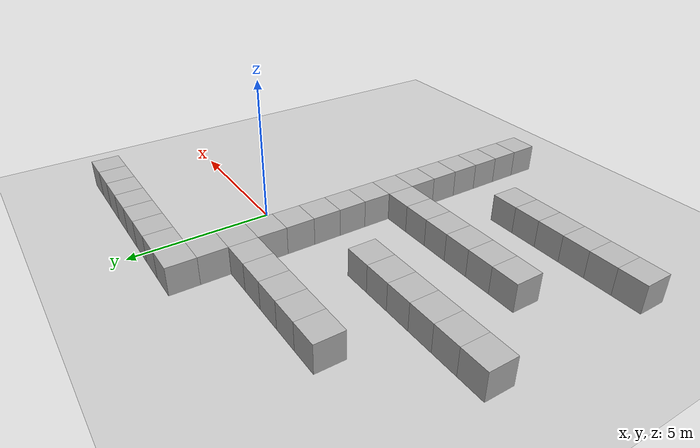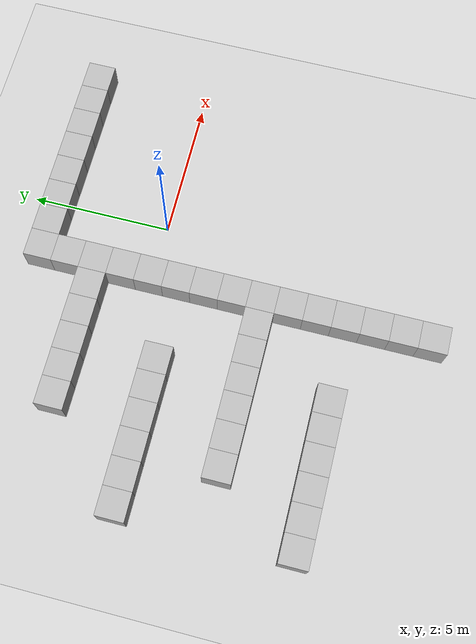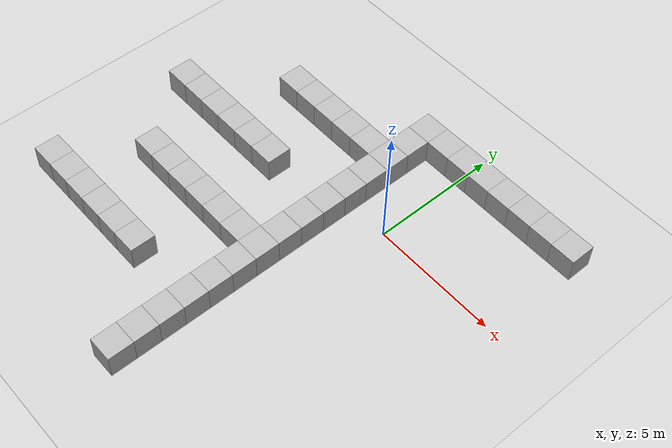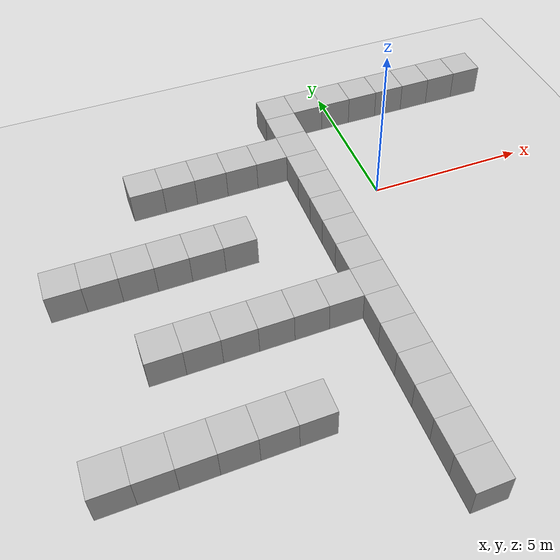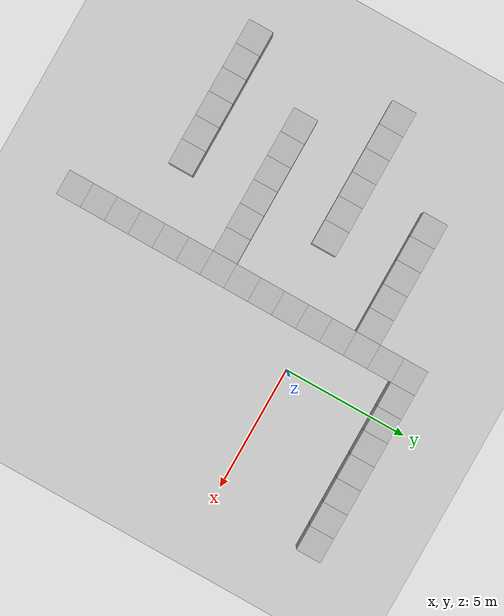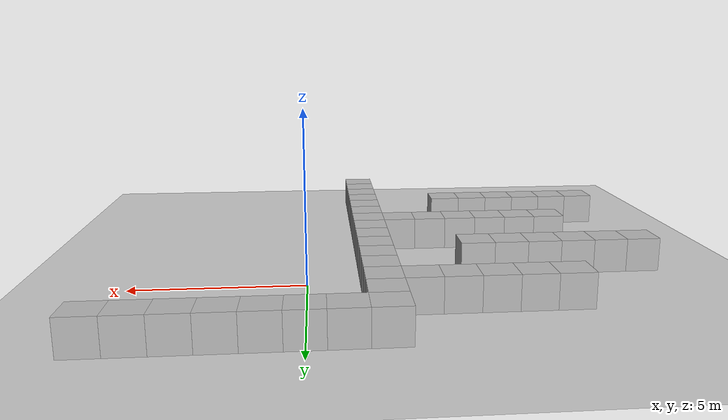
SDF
<?xml version="1.0" ?>
<sdf version="1.5">
  <world name="default">
    <include>
      <uri>model://ground_plane</uri>
    </include>
    <include>
      <uri>model://sun</uri>
    </include>
    <model name="box0">
      <pose>-2 -10 0.5 0 0 0</pose>
      <link name="link">
        <collision name="collision">
          <geometry>
            <box>
              <size>1 1 1</size>
            </box>
          </geometry>
        </collision>
        <visual name="visual">
          <geometry>
            <box>
              <size>1 1 1</size>
            </box>
          </geometry>
          <material>
            <script>Gazebo/WoodPallet</script>
          </material>
        </visual>
      </link>
    </model>
    <model name="box1">
      <pose>-2 -9 0.5 0 0 0</pose>
      <link name="link">
        <collision name="collision">
          <geometry>
            <box>
              <size>1 1 1</size>
            </box>
          </geometry>
        </collision>
        <visual name="visual">
          <geometry>
            <box>
              <size>1 1 1</size>
            </box>
          </geometry>
          <material>
            <script>Gazebo/WoodPallet</script>
          </material>
        </visual>
      </link>
    </model>
    <model name="box2">
      <pose>-2 -8 0.5 0 0 0</pose>
      <link name="link">
        <collision name="collision">
          <geometry>
            <box>
              <size>1 1 1</size>
            </box>
          </geometry>
        </collision>
        <visual name="visual">
          <geometry>
            <box>
              <size>1 1 1</size>
            </box>
          </geometry>
          <material>
            <script>Gazebo/WoodPallet</script>
          </material>
        </visual>
      </link>
    </model>
    <model name="box3">
      <pose>-2 -7 0.5 0 0 0</pose>
      <link name="link">
        <collision name="collision">
          <geometry>
            <box>
              <size>1 1 1</size>
            </box>
          </geometry>
        </collision>
        <visual name="visual">
          <geometry>
            <box>
              <size>1 1 1</size>
            </box>
          </geometry>
          <material>
            <script>Gazebo/WoodPallet</script>
          </material>
        </visual>
      </link>
    </model>
    <model name="box4">
      <pose>-2 -6 0.5 0 0 0</pose>
      <link name="link">
        <collision name="collision">
          <geometry>
            <box>
              <size>1 1 1</size>
            </box>
          </geometry>
        </collision>
        <visual name="visual">
          <geometry>
            <box>
              <size>1 1 1</size>
            </box>
          </geometry>
          <material>
            <script>Gazebo/WoodPallet</script>
          </material>
        </visual>
      </link>
    </model>
    <model name="box5">
      <pose>-2 -5 0.5 0 0 0</pose>
      <link name="link">
        <collision name="collision">
          <geometry>
            <box>
              <size>1 1 1</size>
            </box>
          </geometry>
        </collision>
        <visual name="visual">
          <geometry>
            <box>
              <size>1 1 1</size>
            </box>
          </geometry>
          <material>
            <script>Gazebo/WoodPallet</script>
          </material>
        </visual>
      </link>
    </model>
    <model name="box6">
      <pose>-2 -4 0.5 0 0 0</pose>
      <link name="link">
        <collision name="collision">
          <geometry>
            <box>
              <size>1 1 1</size>
            </box>
          </geometry>
        </collision>
        <visual name="visual">
          <geometry>
            <box>
              <size>1 1 1</size>
            </box>
          </geometry>
          <material>
            <script>Gazebo/WoodPallet</script>
          </material>
        </visual>
      </link>
    </model>
    <model name="box7">
      <pose>-10 -7 0.5 0 0 0</pose>
      <link name="link">
        <collision name="collision">
          <geometry>
            <box>
              <size>1 1 1</size>
            </box>
          </geometry>
        </collision>
        <visual name="visual">
          <geometry>
            <box>
              <size>1 1 1</size>
            </box>
          </geometry>
          <material>
            <script>Gazebo/WoodPallet</script>
          </material>
        </visual>
      </link>
    </model>
    <model name="box8">
      <pose>-9 -7 0.5 0 0 0</pose>
      <link name="link">
        <collision name="collision">
          <geometry>
            <box>
              <size>1 1 1</size>
            </box>
          </geometry>
        </collision>
        <visual name="visual">
          <geometry>
            <box>
              <size>1 1 1</size>
            </box>
          </geometry>
          <material>
            <script>Gazebo/WoodPallet</script>
          </material>
        </visual>
      </link>
    </model>
    <model name="box9">
      <pose>-8 -7 0.5 0 0 0</pose>
      <link name="link">
        <collision name="collision">
          <geometry>
            <box>
              <size>1 1 1</size>
            </box>
          </geometry>
        </collision>
        <visual name="visual">
          <geometry>
            <box>
              <size>1 1 1</size>
            </box>
          </geometry>
          <material>
            <script>Gazebo/WoodPallet</script>
          </material>
        </visual>
      </link>
    </model>
    <model name="box10">
      <pose>-7 -7 0.5 0 0 0</pose>
      <link name="link">
        <collision name="collision">
          <geometry>
            <box>
              <size>1 1 1</size>
            </box>
          </geometry>
        </collision>
        <visual name="visual">
          <geometry>
            <box>
              <size>1 1 1</size>
            </box>
          </geometry>
          <material>
            <script>Gazebo/WoodPallet</script>
          </material>
        </visual>
      </link>
    </model>
    <model name="box11">
      <pose>-6 -7 0.5 0 0 0</pose>
      <link name="link">
        <collision name="collision">
          <geometry>
            <box>
              <size>1 1 1</size>
            </box>
          </geometry>
        </collision>
        <visual name="visual">
          <geometry>
            <box>
              <size>1 1 1</size>
            </box>
          </geometry>
          <material>
            <script>Gazebo/WoodPallet</script>
          </material>
        </visual>
      </link>
    </model>
    <model name="box12">
      <pose>-5 -7 0.5 0 0 0</pose>
      <link name="link">
        <collision name="collision">
          <geometry>
            <box>
              <size>1 1 1</size>
            </box>
          </geometry>
        </collision>
        <visual name="visual">
          <geometry>
            <box>
              <size>1 1 1</size>
            </box>
          </geometry>
          <material>
            <script>Gazebo/WoodPallet</script>
          </material>
        </visual>
      </link>
    </model>
    <model name="box13">
      <pose>-3 -4 0.5 0 0 0</pose>
      <link name="link">
        <collision name="collision">
          <geometry>
            <box>
              <size>1 1 1</size>
            </box>
          </geometry>
        </collision>
        <visual name="visual">
          <geometry>
            <box>
              <size>1 1 1</size>
            </box>
          </geometry>
          <material>
            <script>Gazebo/WoodPallet</script>
          </material>
        </visual>
      </link>
    </model>
    <model name="box14">
      <pose>-4 -4 0.5 0 0 0</pose>
      <link name="link">
        <collision name="collision">
          <geometry>
            <box>
              <size>1 1 1</size>
            </box>
          </geometry>
        </collision>
        <visual name="visual">
          <geometry>
            <box>
              <size>1 1 1</size>
            </box>
          </geometry>
          <material>
            <script>Gazebo/WoodPallet</script>
          </material>
        </visual>
      </link>
    </model>
    <model name="box15">
      <pose>-5 -4 0.5 0 0 0</pose>
      <link name="link">
        <collision name="collision">
          <geometry>
            <box>
              <size>1 1 1</size>
            </box>
          </geometry>
        </collision>
        <visual name="visual">
          <geometry>
            <box>
              <size>1 1 1</size>
            </box>
          </geometry>
          <material>
            <script>Gazebo/WoodPallet</script>
          </material>
        </visual>
      </link>
    </model>
    <model name="box16">
      <pose>-6 -4 0.5 0 0 0</pose>
      <link name="link">
        <collision name="collision">
          <geometry>
            <box>
              <size>1 1 1</size>
            </box>
          </geometry>
        </collision>
        <visual name="visual">
          <geometry>
            <box>
              <size>1 1 1</size>
            </box>
          </geometry>
          <material>
            <script>Gazebo/WoodPallet</script>
          </material>
        </visual>
      </link>
    </model>
    <model name="box17">
      <pose>-7 -4 0.5 0 0 0</pose>
      <link name="link">
        <collision name="collision">
          <geometry>
            <box>
              <size>1 1 1</size>
            </box>
          </geometry>
        </collision>
        <visual name="visual">
          <geometry>
            <box>
              <size>1 1 1</size>
            </box>
          </geometry>
          <material>
            <script>Gazebo/WoodPallet</script>
          </material>
        </visual>
      </link>
    </model>
    <model name="box18">
      <pose>-8 -4 0.5 0 0 0</pose>
      <link name="link">
        <collision name="collision">
          <geometry>
            <box>
              <size>1 1 1</size>
            </box>
          </geometry>
        </collision>
        <visual name="visual">
          <geometry>
            <box>
              <size>1 1 1</size>
            </box>
          </geometry>
          <material>
            <script>Gazebo/WoodPallet</script>
          </material>
        </visual>
      </link>
    </model>
    <model name="box19">
      <pose>-10 -1 0.5 0 0 0</pose>
      <link name="link">
        <collision name="collision">
          <geometry>
            <box>
              <size>1 1 1</size>
            </box>
          </geometry>
        </collision>
        <visual name="visual">
          <geometry>
            <box>
              <size>1 1 1</size>
            </box>
          </geometry>
          <material>
            <script>Gazebo/WoodPallet</script>
          </material>
        </visual>
      </link>
    </model>
    <model name="box20">
      <pose>-9 -1 0.5 0 0 0</pose>
      <link name="link">
        <collision name="collision">
          <geometry>
            <box>
              <size>1 1 1</size>
            </box>
          </geometry>
        </collision>
        <visual name="visual">
          <geometry>
            <box>
              <size>1 1 1</size>
            </box>
          </geometry>
          <material>
            <script>Gazebo/WoodPallet</script>
          </material>
        </visual>
      </link>
    </model>
    <model name="box21">
      <pose>-8 -1 0.5 0 0 0</pose>
      <link name="link">
        <collision name="collision">
          <geometry>
            <box>
              <size>1 1 1</size>
            </box>
          </geometry>
        </collision>
        <visual name="visual">
          <geometry>
            <box>
              <size>1 1 1</size>
            </box>
          </geometry>
          <material>
            <script>Gazebo/WoodPallet</script>
          </material>
        </visual>
      </link>
    </model>
    <model name="box22">
      <pose>-7 -1 0.5 0 0 0</pose>
      <link name="link">
        <collision name="collision">
          <geometry>
            <box>
              <size>1 1 1</size>
            </box>
          </geometry>
        </collision>
        <visual name="visual">
          <geometry>
            <box>
              <size>1 1 1</size>
            </box>
          </geometry>
          <material>
            <script>Gazebo/WoodPallet</script>
          </material>
        </visual>
      </link>
    </model>
    <model name="box23">
      <pose>-6 -1 0.5 0 0 0</pose>
      <link name="link">
        <collision name="collision">
          <geometry>
            <box>
              <size>1 1 1</size>
            </box>
          </geometry>
        </collision>
        <visual name="visual">
          <geometry>
            <box>
              <size>1 1 1</size>
            </box>
          </geometry>
          <material>
            <script>Gazebo/WoodPallet</script>
          </material>
        </visual>
      </link>
    </model>
    <model name="box24">
      <pose>-5 -1 0.5 0 0 0</pose>
      <link name="link">
        <collision name="collision">
          <geometry>
            <box>
              <size>1 1 1</size>
            </box>
          </geometry>
        </collision>
        <visual name="visual">
          <geometry>
            <box>
              <size>1 1 1</size>
            </box>
          </geometry>
          <material>
            <script>Gazebo/WoodPallet</script>
          </material>
        </visual>
      </link>
    </model>
    <model name="box25">
      <pose>-2 -3 0.5 0 0 0</pose>
      <link name="link">
        <collision name="collision">
          <geometry>
            <box>
              <size>1 1 1</size>
            </box>
          </geometry>
        </collision>
        <visual name="visual">
          <geometry>
            <box>
              <size>1 1 1</size>
            </box>
          </geometry>
          <material>
            <script>Gazebo/WoodPallet</script>
          </material>
        </visual>
      </link>
    </model>
    <model name="box26">
      <pose>-2 -2 0.5 0 0 0</pose>
      <link name="link">
        <collision name="collision">
          <geometry>
            <box>
              <size>1 1 1</size>
            </box>
          </geometry>
        </collision>
        <visual name="visual">
          <geometry>
            <box>
              <size>1 1 1</size>
            </box>
          </geometry>
          <material>
            <script>Gazebo/WoodPallet</script>
          </material>
        </visual>
      </link>
    </model>
    <model name="box27">
      <pose>-2 -1 0.5 0 0 0</pose>
      <link name="link">
        <collision name="collision">
          <geometry>
            <box>
              <size>1 1 1</size>
            </box>
          </geometry>
        </collision>
        <visual name="visual">
          <geometry>
            <box>
              <size>1 1 1</size>
            </box>
          </geometry>
          <material>
            <script>Gazebo/WoodPallet</script>
          </material>
        </visual>
      </link>
    </model>
    <model name="box28">
      <pose>-2 0 0.5 0 0 0</pose>
      <link name="link">
        <collision name="collision">
          <geometry>
            <box>
              <size>1 1 1</size>
            </box>
          </geometry>
        </collision>
        <visual name="visual">
          <geometry>
            <box>
              <size>1 1 1</size>
            </box>
          </geometry>
          <material>
            <script>Gazebo/WoodPallet</script>
          </material>
        </visual>
      </link>
    </model>
    <model name="box29">
      <pose>-2 1 0.5 0 0 0</pose>
      <link name="link">
        <collision name="collision">
          <geometry>
            <box>
              <size>1 1 1</size>
            </box>
          </geometry>
        </collision>
        <visual name="visual">
          <geometry>
            <box>
              <size>1 1 1</size>
            </box>
          </geometry>
          <material>
            <script>Gazebo/WoodPallet</script>
          </material>
        </visual>
      </link>
    </model>
    <model name="box30">
      <pose>-2 2 0.5 0 0 0</pose>
      <link name="link">
        <collision name="collision">
          <geometry>
            <box>
              <size>1 1 1</size>
            </box>
          </geometry>
        </collision>
        <visual name="visual">
          <geometry>
            <box>
              <size>1 1 1</size>
            </box>
          </geometry>
          <material>
            <script>Gazebo/WoodPallet</script>
          </material>
        </visual>
      </link>
    </model>
    <model name="box31">
      <pose>-3 2 0.5 0 0 0</pose>
      <link name="link">
        <collision name="collision">
          <geometry>
            <box>
              <size>1 1 1</size>
            </box>
          </geometry>
        </collision>
        <visual name="visual">
          <geometry>
            <box>
              <size>1 1 1</size>
            </box>
          </geometry>
          <material>
            <script>Gazebo/WoodPallet</script>
          </material>
        </visual>
      </link>
    </model>
    <model name="box32">
      <pose>-4 2 0.5 0 0 0</pose>
      <link name="link">
        <collision name="collision">
          <geometry>
            <box>
              <size>1 1 1</size>
            </box>
          </geometry>
        </collision>
        <visual name="visual">
          <geometry>
            <box>
              <size>1 1 1</size>
            </box>
          </geometry>
          <material>
            <script>Gazebo/WoodPallet</script>
          </material>
        </visual>
      </link>
    </model>
    <model name="box33">
      <pose>-5 2 0.5 0 0 0</pose>
      <link name="link">
        <collision name="collision">
          <geometry>
            <box>
              <size>1 1 1</size>
            </box>
          </geometry>
        </collision>
        <visual name="visual">
          <geometry>
            <box>
              <size>1 1 1</size>
            </box>
          </geometry>
          <material>
            <script>Gazebo/WoodPallet</script>
          </material>
        </visual>
      </link>
    </model>
    <model name="box34">
      <pose>-6 2 0.5 0 0 0</pose>
      <link name="link">
        <collision name="collision">
          <geometry>
            <box>
              <size>1 1 1</size>
            </box>
          </geometry>
        </collision>
        <visual name="visual">
          <geometry>
            <box>
              <size>1 1 1</size>
            </box>
          </geometry>
          <material>
            <script>Gazebo/WoodPallet</script>
          </material>
        </visual>
      </link>
    </model>
    <model name="box35">
      <pose>-7 2 0.5 0 0 0</pose>
      <link name="link">
        <collision name="collision">
          <geometry>
            <box>
              <size>1 1 1</size>
            </box>
          </geometry>
        </collision>
        <visual name="visual">
          <geometry>
            <box>
              <size>1 1 1</size>
            </box>
          </geometry>
          <material>
            <script>Gazebo/WoodPallet</script>
          </material>
        </visual>
      </link>
    </model>
    <model name="box36">
      <pose>-2 3 0.5 0 0 0</pose>
      <link name="link">
        <collision name="collision">
          <geometry>
            <box>
              <size>1 1 1</size>
            </box>
          </geometry>
        </collision>
        <visual name="visual">
          <geometry>
            <box>
              <size>1 1 1</size>
            </box>
          </geometry>
          <material>
            <script>Gazebo/WoodPallet</script>
          </material>
        </visual>
      </link>
    </model>
    <model name="box37">
      <pose>-2 4 0.5 0 0 0</pose>
      <link name="link">
        <collision name="collision">
          <geometry>
            <box>
              <size>1 1 1</size>
            </box>
          </geometry>
        </collision>
        <visual name="visual">
          <geometry>
            <box>
              <size>1 1 1</size>
            </box>
          </geometry>
          <material>
            <script>Gazebo/WoodPallet</script>
          </material>
        </visual>
      </link>
    </model>
    <model name="box38">
      <pose>-1 4 0.5 0 0 0</pose>
      <link name="link">
        <collision name="collision">
          <geometry>
            <box>
              <size>1 1 1</size>
            </box>
          </geometry>
        </collision>
        <visual name="visual">
          <geometry>
            <box>
              <size>1 1 1</size>
            </box>
          </geometry>
          <material>
            <script>Gazebo/WoodPallet</script>
          </material>
        </visual>
      </link>
    </model>
    <model name="box39">
      <pose>0 4 0.5 0 0 0</pose>
      <link name="link">
        <collision name="collision">
          <geometry>
            <box>
              <size>1 1 1</size>
            </box>
          </geometry>
        </collision>
        <visual name="visual">
          <geometry>
            <box>
              <size>1 1 1</size>
            </box>
          </geometry>
          <material>
            <script>Gazebo/WoodPallet</script>
          </material>
        </visual>
      </link>
    </model>
    <model name="box40">
      <pose>1 4 0.5 0 0 0</pose>
      <link name="link">
        <collision name="collision">
          <geometry>
            <box>
              <size>1 1 1</size>
            </box>
          </geometry>
        </collision>
        <visual name="visual">
          <geometry>
            <box>
              <size>1 1 1</size>
            </box>
          </geometry>
          <material>
            <script>Gazebo/WoodPallet</script>
          </material>
        </visual>
      </link>
    </model>
    <model name="box41">
      <pose>2 4 0.5 0 0 0</pose>
      <link name="link">
        <collision name="collision">
          <geometry>
            <box>
              <size>1 1 1</size>
            </box>
          </geometry>
        </collision>
        <visual name="visual">
          <geometry>
            <box>
              <size>1 1 1</size>
            </box>
          </geometry>
          <material>
            <script>Gazebo/WoodPallet</script>
          </material>
        </visual>
      </link>
    </model>
    <model name="box42">
      <pose>3 4 0.5 0 0 0</pose>
      <link name="link">
        <collision name="collision">
          <geometry>
            <box>
              <size>1 1 1</size>
            </box>
          </geometry>
        </collision>
        <visual name="visual">
          <geometry>
            <box>
              <size>1 1 1</size>
            </box>
          </geometry>
          <material>
            <script>Gazebo/WoodPallet</script>
          </material>
        </visual>
      </link>
    </model>
    <model name="box43">
      <pose>4 4 0.5 0 0 0</pose>
      <link name="link">
        <collision name="collision">
          <geometry>
            <box>
              <size>1 1 1</size>
            </box>
          </geometry>
        </collision>
        <visual name="visual">
          <geometry>
            <box>
              <size>1 1 1</size>
            </box>
          </geometry>
          <material>
            <script>Gazebo/WoodPallet</script>
          </material>
        </visual>
      </link>
    </model>
    <model name="box44">
      <pose>5 4 0.5 0 0 0</pose>
      <link name="link">
        <collision name="collision">
          <geometry>
            <box>
              <size>1 1 1</size>
            </box>
          </geometry>
        </collision>
        <visual name="visual">
          <geometry>
            <box>
              <size>1 1 1</size>
            </box>
          </geometry>
          <material>
            <script>Gazebo/WoodPallet</script>
          </material>
        </visual>
      </link>
    </model>

  </world>
</sdf>
